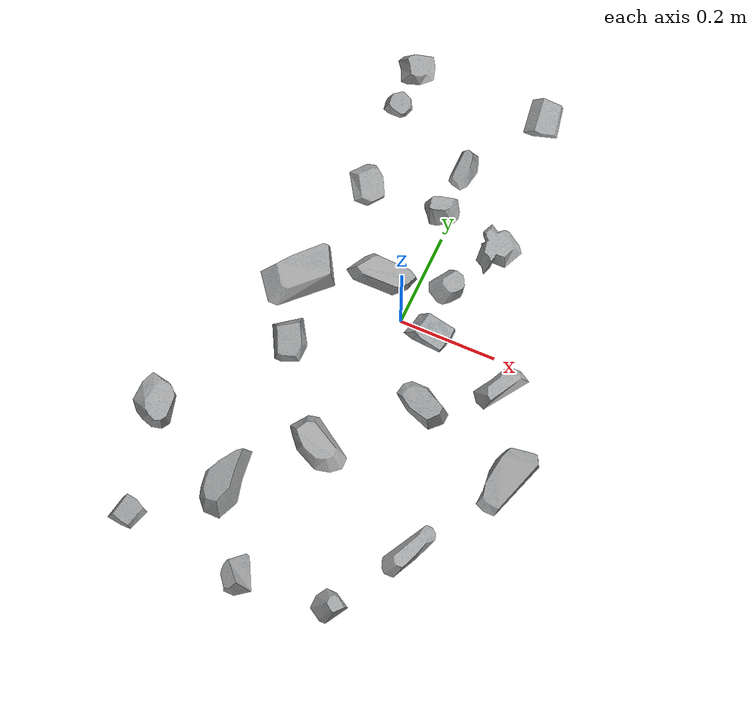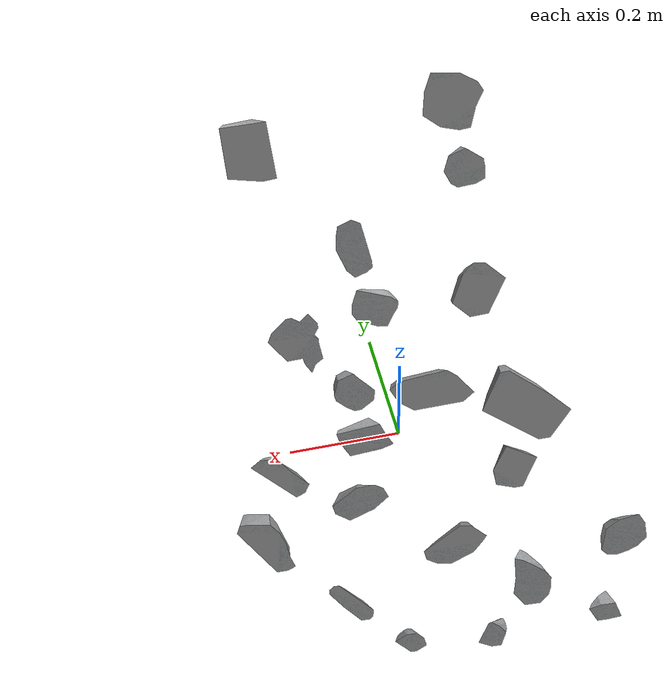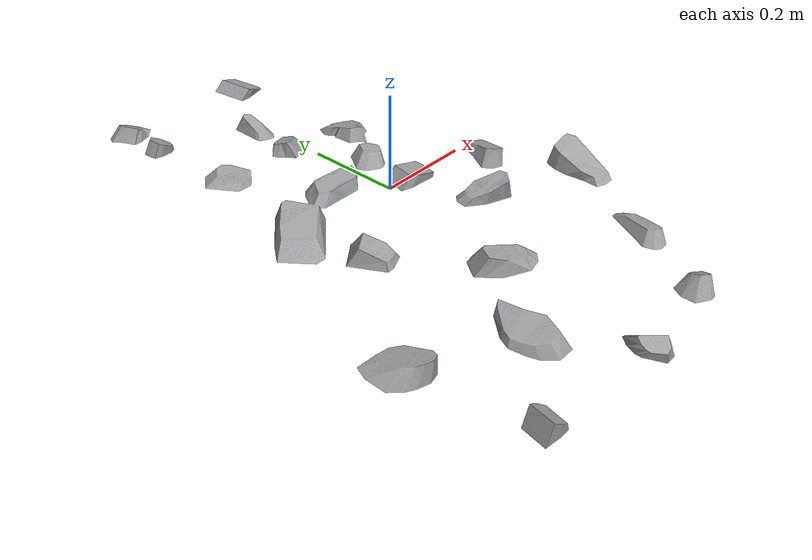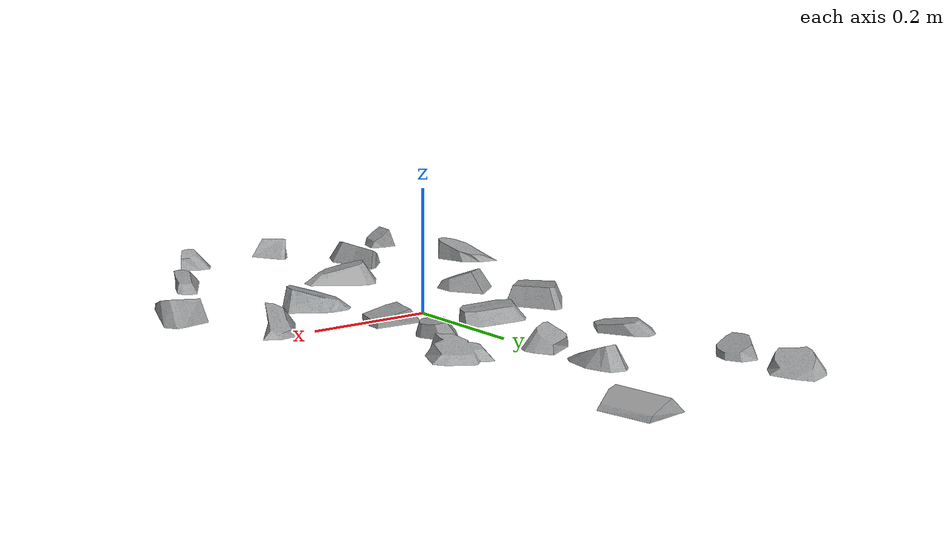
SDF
<?xml version='1.0'?>
<sdf version='1.6'>
  <model name='debris_3_1'>
    <link name='link_5'>
      <pose frame=''>0 0 0 0 -0 0</pose>
      <inertial>
        <mass>1</mass>
        <inertia>
          <ixx>0.166667</ixx>
          <ixy>0</ixy>
          <ixz>0</ixz>
          <iyy>0.166667</iyy>
          <iyz>0</iyz>
          <izz>0.166667</izz>
        </inertia>
      </inertial>
      <visual name='visual'>
        <pose frame=''>0 0 0 0 -0 0</pose>
        <geometry>
          <mesh>
            <uri>model://debris_3_1/meshes/debris_3_1.dae</uri>
            <scale>1 1 1</scale>
          </mesh>
        </geometry>
          <material>
          <script>
            <uri>model://debris_3_1/materials/scripts</uri>
            <uri>model://debris_3_1/materials/textures</uri>
            <name>debris_3</name>
          </script>
        </material>
        <cast_shadows>1</cast_shadows>
        <transparency>0</transparency>
      </visual>
      <collision name='collision'>
        <laser_retro>0</laser_retro>
        <max_contacts>10</max_contacts>
        <pose frame=''>0 0 0 0 -0 0</pose>
        <geometry>
          <mesh>
            <uri>model://debris_3_1/meshes/debris_3_1.dae</uri>
            <scale>1 1 1</scale>
          </mesh>
        </geometry>
        </collision>
    </link>
    <static>1</static>
    <allow_auto_disable>1</allow_auto_disable>
  </model>
</sdf>
